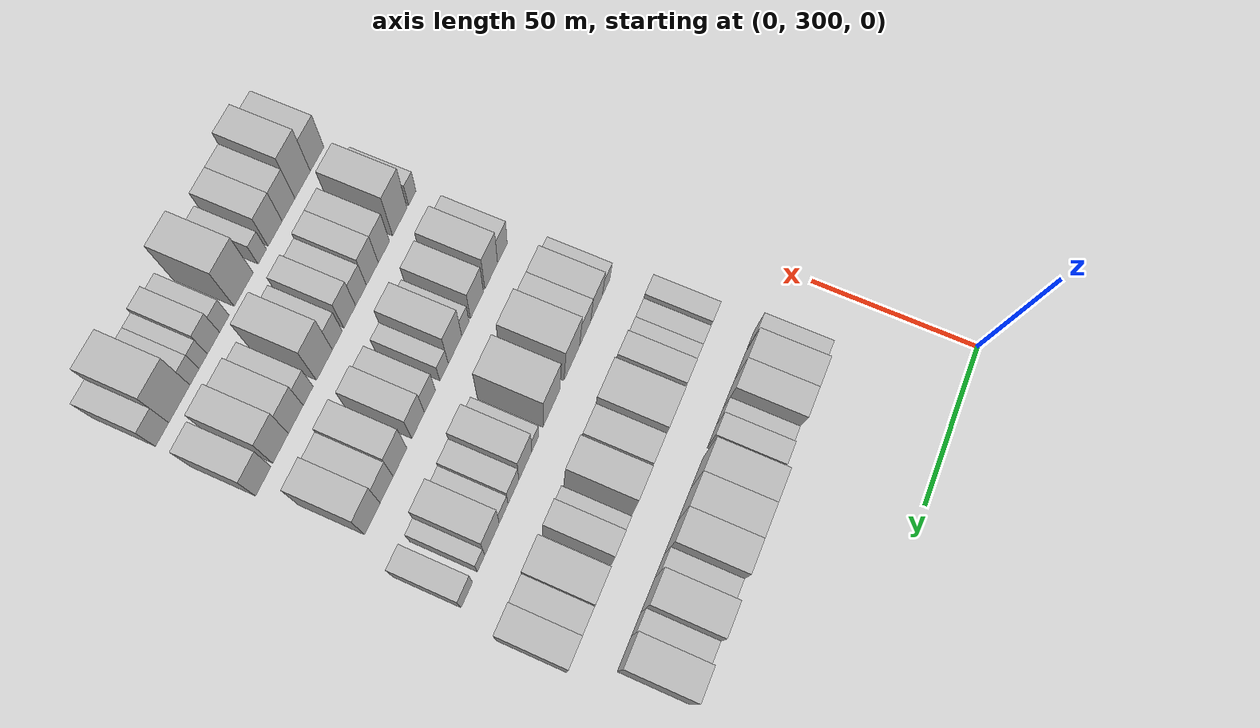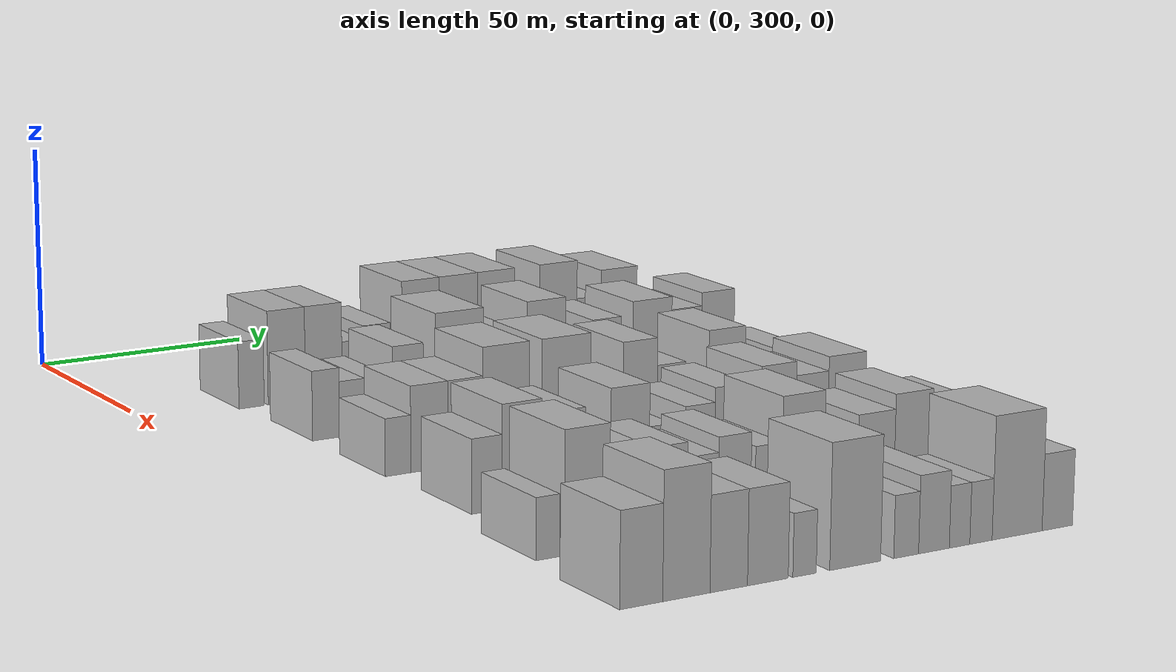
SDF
<sdf version="1.6">
 <world name="default">
  <model name="building_97">
   <static>1</static>
   <pose>50.0000 324.2445 0 0.000000 0.000000 0.000000</pose>
   <link name="link">
    <pose>0 0 7.50 0 0 0</pose>
    <collision name="collision"><geometry><box><size>20.0000 6.0904 15.0000</size></box></geometry></collision>
    <visual name="visual">
     <cast_shadows>0</cast_shadows>
     <geometry><box><size>20.0000 6.0904 15.0000</size></box></geometry>
     <material>
      <script>
       <uri>model://HANNAS_wall/materials/scripts</uri>
       <uri>model://HANNAS_wall/materials/textures</uri>
       <name>vrc/HANNAS_wall</name>
      </script>
     </material>
    </visual>
   </link>
  </model>
  <model name="building_98">
   <static>1</static>
   <pose>50.0000 332.8392 0 0.000000 0.000000 0.000000</pose>
   <link name="link">
    <pose>0 0 10.50 0 0 0</pose>
    <collision name="collision"><geometry><box><size>20.0000 9.0990 21.0000</size></box></geometry></collision>
    <visual name="visual">
     <cast_shadows>0</cast_shadows>
     <geometry><box><size>20.0000 9.0990 21.0000</size></box></geometry>
     <material>
      <script>
       <uri>model://HANNAS_wall/materials/scripts</uri>
       <uri>model://HANNAS_wall/materials/textures</uri>
       <name>vrc/HANNAS_wall</name>
      </script>
     </material>
    </visual>
   </link>
  </model>
  <model name="building_99">
   <static>1</static>
   <pose>50.0000 341.9358 0 0.000000 0.000000 0.000000</pose>
   <link name="link">
    <pose>0 0 10.50 0 0 0</pose>
    <collision name="collision"><geometry><box><size>20.0000 9.0942 21.0000</size></box></geometry></collision>
    <visual name="visual">
     <cast_shadows>0</cast_shadows>
     <geometry><box><size>20.0000 9.0942 21.0000</size></box></geometry>
     <material>
      <script>
       <uri>model://HANNAS_wall/materials/scripts</uri>
       <uri>model://HANNAS_wall/materials/textures</uri>
       <name>vrc/HANNAS_wall</name>
      </script>
     </material>
    </visual>
   </link>
  </model>
  <model name="building_100">
   <static>1</static>
   <pose>50.0000 349.1589 0 0.000000 0.000000 0.000000</pose>
   <link name="link">
    <pose>0 0 6.00 0 0 0</pose>
    <collision name="collision"><geometry><box><size>20.0000 5.3521 12.0000</size></box></geometry></collision>
    <visual name="visual">
     <cast_shadows>0</cast_shadows>
     <geometry><box><size>20.0000 5.3521 12.0000</size></box></geometry>
     <material>
      <script>
       <uri>model://HANNAS_wall/materials/scripts</uri>
       <uri>model://HANNAS_wall/materials/textures</uri>
       <name>vrc/HANNAS_wall</name>
      </script>
     </material>
    </visual>
   </link>
  </model>
  <model name="building_101">
   <static>1</static>
   <pose>50.0000 355.2303 0 0.000000 0.000000 0.000000</pose>
   <link name="link">
    <pose>0 0 7.50 0 0 0</pose>
    <collision name="collision"><geometry><box><size>20.0000 6.7906 15.0000</size></box></geometry></collision>
    <visual name="visual">
     <cast_shadows>0</cast_shadows>
     <geometry><box><size>20.0000 6.7906 15.0000</size></box></geometry>
     <material>
      <script>
       <uri>model://HANNAS_wall/materials/scripts</uri>
       <uri>model://HANNAS_wall/materials/textures</uri>
       <name>vrc/HANNAS_wall</name>
      </script>
     </material>
    </visual>
   </link>
  </model>
  <model name="building_102">
   <static>1</static>
   <pose>50.0000 366.4303 0 0.000000 0.000000 0.000000</pose>
   <link name="link">
    <pose>0 0 12.00 0 0 0</pose>
    <collision name="collision"><geometry><box><size>20.0000 9.6093 24.0000</size></box></geometry></collision>
    <visual name="visual">
     <cast_shadows>0</cast_shadows>
     <geometry><box><size>20.0000 9.6093 24.0000</size></box></geometry>
     <material>
      <script>
       <uri>model://HANNAS_wall/materials/scripts</uri>
       <uri>model://HANNAS_wall/materials/textures</uri>
       <name>vrc/HANNAS_wall</name>
      </script>
     </material>
    </visual>
   </link>
  </model>
  <model name="building_103">
   <static>1</static>
   <pose>50.0000 376.1399 0 0.000000 0.000000 0.000000</pose>
   <link name="link">
    <pose>0 0 12.00 0 0 0</pose>
    <collision name="collision"><geometry><box><size>20.0000 9.8100 24.0000</size></box></geometry></collision>
    <visual name="visual">
     <cast_shadows>0</cast_shadows>
     <geometry><box><size>20.0000 9.8100 24.0000</size></box></geometry>
     <material>
      <script>
       <uri>model://HANNAS_wall/materials/scripts</uri>
       <uri>model://HANNAS_wall/materials/textures</uri>
       <name>vrc/HANNAS_wall</name>
      </script>
     </material>
    </visual>
   </link>
  </model>
  <model name="building_104">
   <static>1</static>
   <pose>50.0000 385.9068 0 0.000000 0.000000 0.000000</pose>
   <link name="link">
    <pose>0 0 12.00 0 0 0</pose>
    <collision name="collision"><geometry><box><size>20.0000 9.7238 24.0000</size></box></geometry></collision>
    <visual name="visual">
     <cast_shadows>0</cast_shadows>
     <geometry><box><size>20.0000 9.7238 24.0000</size></box></geometry>
     <material>
      <script>
       <uri>model://HANNAS_wall/materials/scripts</uri>
       <uri>model://HANNAS_wall/materials/textures</uri>
       <name>vrc/HANNAS_wall</name>
      </script>
     </material>
    </visual>
   </link>
  </model>
  <model name="building_105">
   <static>1</static>
   <pose>50.0000 394.1349 0 0.000000 0.000000 0.000000</pose>
   <link name="link">
    <pose>0 0 7.50 0 0 0</pose>
    <collision name="collision"><geometry><box><size>20.0000 6.7324 15.0000</size></box></geometry></collision>
    <visual name="visual">
     <cast_shadows>0</cast_shadows>
     <geometry><box><size>20.0000 6.7324 15.0000</size></box></geometry>
     <material>
      <script>
       <uri>model://HANNAS_wall/materials/scripts</uri>
       <uri>model://HANNAS_wall/materials/textures</uri>
       <name>vrc/HANNAS_wall</name>
      </script>
     </material>
    </visual>
   </link>
  </model>
  <model name="building_106">
   <static>1</static>
   <pose>50.0000 402.4885 0 0.000000 0.000000 0.000000</pose>
   <link name="link">
    <pose>0 0 12.00 0 0 0</pose>
    <collision name="collision"><geometry><box><size>20.0000 9.9749 24.0000</size></box></geometry></collision>
    <visual name="visual">
     <cast_shadows>0</cast_shadows>
     <geometry><box><size>20.0000 9.9749 24.0000</size></box></geometry>
     <material>
      <script>
       <uri>model://HANNAS_wall/materials/scripts</uri>
       <uri>model://HANNAS_wall/materials/textures</uri>
       <name>vrc/HANNAS_wall</name>
      </script>
     </material>
    </visual>
   </link>
  </model>
  <model name="building_107">
   <static>1</static>
   <pose>50.0000 410.7297 0 0.000000 0.000000 0.000000</pose>
   <link name="link">
    <pose>0 0 7.50 0 0 0</pose>
    <collision name="collision"><geometry><box><size>20.0000 6.5074 15.0000</size></box></geometry></collision>
    <visual name="visual">
     <cast_shadows>0</cast_shadows>
     <geometry><box><size>20.0000 6.5074 15.0000</size></box></geometry>
     <material>
      <script>
       <uri>model://HANNAS_wall/materials/scripts</uri>
       <uri>model://HANNAS_wall/materials/textures</uri>
       <name>vrc/HANNAS_wall</name>
      </script>
     </material>
    </visual>
   </link>
  </model>
  <model name="building_108">
   <static>1</static>
   <pose>50.0000 418.9226 0 0.000000 0.000000 0.000000</pose>
   <link name="link">
    <pose>0 0 10.50 0 0 0</pose>
    <collision name="collision"><geometry><box><size>20.0000 9.8784 21.0000</size></box></geometry></collision>
    <visual name="visual">
     <cast_shadows>0</cast_shadows>
     <geometry><box><size>20.0000 9.8784 21.0000</size></box></geometry>
     <material>
      <script>
       <uri>model://HANNAS_wall/materials/scripts</uri>
       <uri>model://HANNAS_wall/materials/textures</uri>
       <name>vrc/HANNAS_wall</name>
      </script>
     </material>
    </visual>
   </link>
  </model>
  <model name="building_220">
   <static>1</static>
   <pose>82.0000 326.1415 0 0.000000 0.000000 0.000000</pose>
   <link name="link">
    <pose>0 0 7.50 0 0 0</pose>
    <collision name="collision"><geometry><box><size>20.0000 6.3848 15.0000</size></box></geometry></collision>
    <visual name="visual">
     <cast_shadows>0</cast_shadows>
     <geometry><box><size>20.0000 6.3848 15.0000</size></box></geometry>
     <material>
      <script>
       <uri>model://HANNAS_wall/materials/scripts</uri>
       <uri>model://HANNAS_wall/materials/textures</uri>
       <name>vrc/HANNAS_wall</name>
      </script>
     </material>
    </visual>
   </link>
  </model>
  <model name="building_221">
   <static>1</static>
   <pose>82.0000 332.3140 0 0.000000 0.000000 0.000000</pose>
   <link name="link">
    <pose>0 0 6.00 0 0 0</pose>
    <collision name="collision"><geometry><box><size>20.0000 5.9602 12.0000</size></box></geometry></collision>
    <visual name="visual">
     <cast_shadows>0</cast_shadows>
     <geometry><box><size>20.0000 5.9602 12.0000</size></box></geometry>
     <material>
      <script>
       <uri>model://HANNAS_wall/materials/scripts</uri>
       <uri>model://HANNAS_wall/materials/textures</uri>
       <name>vrc/HANNAS_wall</name>
      </script>
     </material>
    </visual>
   </link>
  </model>
  <model name="building_222">
   <static>1</static>
   <pose>82.0000 338.1371 0 0.000000 0.000000 0.000000</pose>
   <link name="link">
    <pose>0 0 6.00 0 0 0</pose>
    <collision name="collision"><geometry><box><size>20.0000 5.6861 12.0000</size></box></geometry></collision>
    <visual name="visual">
     <cast_shadows>0</cast_shadows>
     <geometry><box><size>20.0000 5.6861 12.0000</size></box></geometry>
     <material>
      <script>
       <uri>model://HANNAS_wall/materials/scripts</uri>
       <uri>model://HANNAS_wall/materials/textures</uri>
       <name>vrc/HANNAS_wall</name>
      </script>
     </material>
    </visual>
   </link>
  </model>
  <model name="building_223">
   <static>1</static>
   <pose>82.0000 345.7145 0 0.000000 0.000000 0.000000</pose>
   <link name="link">
    <pose>0 0 9.00 0 0 0</pose>
    <collision name="collision"><geometry><box><size>20.0000 7.4686 18.0000</size></box></geometry></collision>
    <visual name="visual">
     <cast_shadows>0</cast_shadows>
     <geometry><box><size>20.0000 7.4686 18.0000</size></box></geometry>
     <material>
      <script>
       <uri>model://HANNAS_wall/materials/scripts</uri>
       <uri>model://HANNAS_wall/materials/textures</uri>
       <name>vrc/HANNAS_wall</name>
      </script>
     </material>
    </visual>
   </link>
  </model>
  <model name="building_224">
   <static>1</static>
   <pose>82.0000 358.3834 0 0.000000 0.000000 0.000000</pose>
   <link name="link">
    <pose>0 0 12.00 0 0 0</pose>
    <collision name="collision"><geometry><box><size>20.0000 11.8694 24.0000</size></box></geometry></collision>
    <visual name="visual">
     <cast_shadows>0</cast_shadows>
     <geometry><box><size>20.0000 11.8694 24.0000</size></box></geometry>
     <material>
      <script>
       <uri>model://HANNAS_wall/materials/scripts</uri>
       <uri>model://HANNAS_wall/materials/textures</uri>
       <name>vrc/HANNAS_wall</name>
      </script>
     </material>
    </visual>
   </link>
  </model>
  <model name="building_225">
   <static>1</static>
   <pose>82.0000 368.7389 0 0.000000 0.000000 0.000000</pose>
   <link name="link">
    <pose>0 0 9.00 0 0 0</pose>
    <collision name="collision"><geometry><box><size>20.0000 8.8415 18.0000</size></box></geometry></collision>
    <visual name="visual">
     <cast_shadows>0</cast_shadows>
     <geometry><box><size>20.0000 8.8415 18.0000</size></box></geometry>
     <material>
      <script>
       <uri>model://HANNAS_wall/materials/scripts</uri>
       <uri>model://HANNAS_wall/materials/textures</uri>
       <name>vrc/HANNAS_wall</name>
      </script>
     </material>
    </visual>
   </link>
  </model>
  <model name="building_226">
   <static>1</static>
   <pose>82.0000 380.0419 0 0.000000 0.000000 0.000000</pose>
   <link name="link">
    <pose>0 0 12.00 0 0 0</pose>
    <collision name="collision"><geometry><box><size>20.0000 9.7647 24.0000</size></box></geometry></collision>
    <visual name="visual">
     <cast_shadows>0</cast_shadows>
     <geometry><box><size>20.0000 9.7647 24.0000</size></box></geometry>
     <material>
      <script>
       <uri>model://HANNAS_wall/materials/scripts</uri>
       <uri>model://HANNAS_wall/materials/textures</uri>
       <name>vrc/HANNAS_wall</name>
      </script>
     </material>
    </visual>
   </link>
  </model>
  <model name="building_227">
   <static>1</static>
   <pose>82.0000 389.3820 0 0.000000 0.000000 0.000000</pose>
   <link name="link">
    <pose>0 0 6.00 0 0 0</pose>
    <collision name="collision"><geometry><box><size>20.0000 4.9155 12.0000</size></box></geometry></collision>
    <visual name="visual">
     <cast_shadows>0</cast_shadows>
     <geometry><box><size>20.0000 4.9155 12.0000</size></box></geometry>
     <material>
      <script>
       <uri>model://HANNAS_wall/materials/scripts</uri>
       <uri>model://HANNAS_wall/materials/textures</uri>
       <name>vrc/HANNAS_wall</name>
      </script>
     </material>
    </visual>
   </link>
  </model>
  <model name="building_228">
   <static>1</static>
   <pose>82.0000 395.5599 0 0.000000 0.000000 0.000000</pose>
   <link name="link">
    <pose>0 0 9.00 0 0 0</pose>
    <collision name="collision"><geometry><box><size>20.0000 7.4402 18.0000</size></box></geometry></collision>
    <visual name="visual">
     <cast_shadows>0</cast_shadows>
     <geometry><box><size>20.0000 7.4402 18.0000</size></box></geometry>
     <material>
      <script>
       <uri>model://HANNAS_wall/materials/scripts</uri>
       <uri>model://HANNAS_wall/materials/textures</uri>
       <name>vrc/HANNAS_wall</name>
      </script>
     </material>
    </visual>
   </link>
  </model>
  <model name="building_229">
   <static>1</static>
   <pose>82.0000 407.4193 0 0.000000 0.000000 0.000000</pose>
   <link name="link">
    <pose>0 0 10.50 0 0 0</pose>
    <collision name="collision"><geometry><box><size>20.0000 10.2787 21.0000</size></box></geometry></collision>
    <visual name="visual">
     <cast_shadows>0</cast_shadows>
     <geometry><box><size>20.0000 10.2787 21.0000</size></box></geometry>
     <material>
      <script>
       <uri>model://HANNAS_wall/materials/scripts</uri>
       <uri>model://HANNAS_wall/materials/textures</uri>
       <name>vrc/HANNAS_wall</name>
      </script>
     </material>
    </visual>
   </link>
  </model>
  <model name="building_230">
   <static>1</static>
   <pose>82.0000 416.5424 0 0.000000 0.000000 0.000000</pose>
   <link name="link">
    <pose>0 0 9.00 0 0 0</pose>
    <collision name="collision"><geometry><box><size>20.0000 7.9674 18.0000</size></box></geometry></collision>
    <visual name="visual">
     <cast_shadows>0</cast_shadows>
     <geometry><box><size>20.0000 7.9674 18.0000</size></box></geometry>
     <material>
      <script>
       <uri>model://HANNAS_wall/materials/scripts</uri>
       <uri>model://HANNAS_wall/materials/textures</uri>
       <name>vrc/HANNAS_wall</name>
      </script>
     </material>
    </visual>
   </link>
  </model>
  <model name="building_231">
   <static>1</static>
   <pose>82.0000 424.9403 0 0.000000 0.000000 0.000000</pose>
   <link name="link">
    <pose>0 0 10.50 0 0 0</pose>
    <collision name="collision"><geometry><box><size>20.0000 8.8285 21.0000</size></box></geometry></collision>
    <visual name="visual">
     <cast_shadows>0</cast_shadows>
     <geometry><box><size>20.0000 8.8285 21.0000</size></box></geometry>
     <material>
      <script>
       <uri>model://HANNAS_wall/materials/scripts</uri>
       <uri>model://HANNAS_wall/materials/textures</uri>
       <name>vrc/HANNAS_wall</name>
      </script>
     </material>
    </visual>
   </link>
  </model>
  <model name="building_342">
   <static>1</static>
   <pose>114.0000 326.0093 0 0.000000 0.000000 0.000000</pose>
   <link name="link">
    <pose>0 0 6.00 0 0 0</pose>
    <collision name="collision"><geometry><box><size>20.0000 5.8634 12.0000</size></box></geometry></collision>
    <visual name="visual">
     <cast_shadows>0</cast_shadows>
     <geometry><box><size>20.0000 5.8634 12.0000</size></box></geometry>
     <material>
      <script>
       <uri>model://HANNAS_wall/materials/scripts</uri>
       <uri>model://HANNAS_wall/materials/textures</uri>
       <name>vrc/HANNAS_wall</name>
      </script>
     </material>
    </visual>
   </link>
  </model>
  <model name="building_343">
   <static>1</static>
   <pose>114.0000 333.2475 0 0.000000 0.000000 0.000000</pose>
   <link name="link">
    <pose>0 0 9.00 0 0 0</pose>
    <collision name="collision"><geometry><box><size>20.0000 8.6129 18.0000</size></box></geometry></collision>
    <visual name="visual">
     <cast_shadows>0</cast_shadows>
     <geometry><box><size>20.0000 8.6129 18.0000</size></box></geometry>
     <material>
      <script>
       <uri>model://HANNAS_wall/materials/scripts</uri>
       <uri>model://HANNAS_wall/materials/textures</uri>
       <name>vrc/HANNAS_wall</name>
      </script>
     </material>
    </visual>
   </link>
  </model>
  <model name="building_344">
   <static>1</static>
   <pose>114.0000 341.5996 0 0.000000 0.000000 0.000000</pose>
   <link name="link">
    <pose>0 0 9.00 0 0 0</pose>
    <collision name="collision"><geometry><box><size>20.0000 8.0914 18.0000</size></box></geometry></collision>
    <visual name="visual">
     <cast_shadows>0</cast_shadows>
     <geometry><box><size>20.0000 8.0914 18.0000</size></box></geometry>
     <material>
      <script>
       <uri>model://HANNAS_wall/materials/scripts</uri>
       <uri>model://HANNAS_wall/materials/textures</uri>
       <name>vrc/HANNAS_wall</name>
      </script>
     </material>
    </visual>
   </link>
  </model>
  <model name="building_345">
   <static>1</static>
   <pose>114.0000 351.2055 0 0.000000 0.000000 0.000000</pose>
   <link name="link">
    <pose>0 0 12.00 0 0 0</pose>
    <collision name="collision"><geometry><box><size>20.0000 11.1204 24.0000</size></box></geometry></collision>
    <visual name="visual">
     <cast_shadows>0</cast_shadows>
     <geometry><box><size>20.0000 11.1204 24.0000</size></box></geometry>
     <material>
      <script>
       <uri>model://HANNAS_wall/materials/scripts</uri>
       <uri>model://HANNAS_wall/materials/textures</uri>
       <name>vrc/HANNAS_wall</name>
      </script>
     </material>
    </visual>
   </link>
  </model>
  <model name="building_346">
   <static>1</static>
   <pose>114.0000 365.6583 0 0.000000 0.000000 0.000000</pose>
   <link name="link">
    <pose>0 0 12.00 0 0 0</pose>
    <collision name="collision"><geometry><box><size>20.0000 11.7851 24.0000</size></box></geometry></collision>
    <visual name="visual">
     <cast_shadows>0</cast_shadows>
     <geometry><box><size>20.0000 11.7851 24.0000</size></box></geometry>
     <material>
      <script>
       <uri>model://HANNAS_wall/materials/scripts</uri>
       <uri>model://HANNAS_wall/materials/textures</uri>
       <name>vrc/HANNAS_wall</name>
      </script>
     </material>
    </visual>
   </link>
  </model>
  <model name="building_347">
   <static>1</static>
   <pose>114.0000 377.0051 0 0.000000 0.000000 0.000000</pose>
   <link name="link">
    <pose>0 0 6.00 0 0 0</pose>
    <collision name="collision"><geometry><box><size>20.0000 4.9085 12.0000</size></box></geometry></collision>
    <visual name="visual">
     <cast_shadows>0</cast_shadows>
     <geometry><box><size>20.0000 4.9085 12.0000</size></box></geometry>
     <material>
      <script>
       <uri>model://HANNAS_wall/materials/scripts</uri>
       <uri>model://HANNAS_wall/materials/textures</uri>
       <name>vrc/HANNAS_wall</name>
      </script>
     </material>
    </visual>
   </link>
  </model>
  <model name="building_348">
   <static>1</static>
   <pose>114.0000 383.7370 0 0.000000 0.000000 0.000000</pose>
   <link name="link">
    <pose>0 0 10.50 0 0 0</pose>
    <collision name="collision"><geometry><box><size>20.0000 8.5553 21.0000</size></box></geometry></collision>
    <visual name="visual">
     <cast_shadows>0</cast_shadows>
     <geometry><box><size>20.0000 8.5553 21.0000</size></box></geometry>
     <material>
      <script>
       <uri>model://HANNAS_wall/materials/scripts</uri>
       <uri>model://HANNAS_wall/materials/textures</uri>
       <name>vrc/HANNAS_wall</name>
      </script>
     </material>
    </visual>
   </link>
  </model>
  <model name="building_349">
   <static>1</static>
   <pose>114.0000 391.5890 0 0.000000 0.000000 0.000000</pose>
   <link name="link">
    <pose>0 0 7.50 0 0 0</pose>
    <collision name="collision"><geometry><box><size>20.0000 7.1487 15.0000</size></box></geometry></collision>
    <visual name="visual">
     <cast_shadows>0</cast_shadows>
     <geometry><box><size>20.0000 7.1487 15.0000</size></box></geometry>
     <material>
      <script>
       <uri>model://HANNAS_wall/materials/scripts</uri>
       <uri>model://HANNAS_wall/materials/textures</uri>
       <name>vrc/HANNAS_wall</name>
      </script>
     </material>
    </visual>
   </link>
  </model>
  <model name="building_350">
   <static>1</static>
   <pose>114.0000 398.0593 0 0.000000 0.000000 0.000000</pose>
   <link name="link">
    <pose>0 0 6.00 0 0 0</pose>
    <collision name="collision"><geometry><box><size>20.0000 5.7920 12.0000</size></box></geometry></collision>
    <visual name="visual">
     <cast_shadows>0</cast_shadows>
     <geometry><box><size>20.0000 5.7920 12.0000</size></box></geometry>
     <material>
      <script>
       <uri>model://HANNAS_wall/materials/scripts</uri>
       <uri>model://HANNAS_wall/materials/textures</uri>
       <name>vrc/HANNAS_wall</name>
      </script>
     </material>
    </visual>
   </link>
  </model>
  <model name="building_351">
   <static>1</static>
   <pose>114.0000 405.6379 0 0.000000 0.000000 0.000000</pose>
   <link name="link">
    <pose>0 0 10.50 0 0 0</pose>
    <collision name="collision"><geometry><box><size>20.0000 9.3652 21.0000</size></box></geometry></collision>
    <visual name="visual">
     <cast_shadows>0</cast_shadows>
     <geometry><box><size>20.0000 9.3652 21.0000</size></box></geometry>
     <material>
      <script>
       <uri>model://HANNAS_wall/materials/scripts</uri>
       <uri>model://HANNAS_wall/materials/textures</uri>
       <name>vrc/HANNAS_wall</name>
      </script>
     </material>
    </visual>
   </link>
  </model>
  <model name="building_352">
   <static>1</static>
   <pose>114.0000 412.7276 0 0.000000 0.000000 0.000000</pose>
   <link name="link">
    <pose>0 0 6.00 0 0 0</pose>
    <collision name="collision"><geometry><box><size>20.0000 4.8141 12.0000</size></box></geometry></collision>
    <visual name="visual">
     <cast_shadows>0</cast_shadows>
     <geometry><box><size>20.0000 4.8141 12.0000</size></box></geometry>
     <material>
      <script>
       <uri>model://HANNAS_wall/materials/scripts</uri>
       <uri>model://HANNAS_wall/materials/textures</uri>
       <name>vrc/HANNAS_wall</name>
      </script>
     </material>
    </visual>
   </link>
  </model>
  <model name="building_353">
   <static>1</static>
   <pose>114.0000 421.7704 0 0.000000 0.000000 0.000000</pose>
   <link name="link">
    <pose>0 0 7.50 0 0 0</pose>
    <collision name="collision"><geometry><box><size>20.0000 7.2715 15.0000</size></box></geometry></collision>
    <visual name="visual">
     <cast_shadows>0</cast_shadows>
     <geometry><box><size>20.0000 7.2715 15.0000</size></box></geometry>
     <material>
      <script>
       <uri>model://HANNAS_wall/materials/scripts</uri>
       <uri>model://HANNAS_wall/materials/textures</uri>
       <name>vrc/HANNAS_wall</name>
      </script>
     </material>
    </visual>
   </link>
  </model>
  <model name="building_454">
   <static>1</static>
   <pose>146.0000 328.1781 0 0.000000 0.000000 0.000000</pose>
   <link name="link">
    <pose>0 0 7.50 0 0 0</pose>
    <collision name="collision"><geometry><box><size>20.0000 6.8369 15.0000</size></box></geometry></collision>
    <visual name="visual">
     <cast_shadows>0</cast_shadows>
     <geometry><box><size>20.0000 6.8369 15.0000</size></box></geometry>
     <material>
      <script>
       <uri>model://HANNAS_wall/materials/scripts</uri>
       <uri>model://HANNAS_wall/materials/textures</uri>
       <name>vrc/HANNAS_wall</name>
      </script>
     </material>
    </visual>
   </link>
  </model>
  <model name="building_455">
   <static>1</static>
   <pose>146.0000 336.0515 0 0.000000 0.000000 0.000000</pose>
   <link name="link">
    <pose>0 0 10.50 0 0 0</pose>
    <collision name="collision"><geometry><box><size>20.0000 8.9099 21.0000</size></box></geometry></collision>
    <visual name="visual">
     <cast_shadows>0</cast_shadows>
     <geometry><box><size>20.0000 8.9099 21.0000</size></box></geometry>
     <material>
      <script>
       <uri>model://HANNAS_wall/materials/scripts</uri>
       <uri>model://HANNAS_wall/materials/textures</uri>
       <name>vrc/HANNAS_wall</name>
      </script>
     </material>
    </visual>
   </link>
  </model>
  <model name="building_456">
   <static>1</static>
   <pose>146.0000 345.9685 0 0.000000 0.000000 0.000000</pose>
   <link name="link">
    <pose>0 0 9.00 0 0 0</pose>
    <collision name="collision"><geometry><box><size>20.0000 8.9242 18.0000</size></box></geometry></collision>
    <visual name="visual">
     <cast_shadows>0</cast_shadows>
     <geometry><box><size>20.0000 8.9242 18.0000</size></box></geometry>
     <material>
      <script>
       <uri>model://HANNAS_wall/materials/scripts</uri>
       <uri>model://HANNAS_wall/materials/textures</uri>
       <name>vrc/HANNAS_wall</name>
      </script>
     </material>
    </visual>
   </link>
  </model>
  <model name="building_457">
   <static>1</static>
   <pose>146.0000 353.8863 0 0.000000 0.000000 0.000000</pose>
   <link name="link">
    <pose>0 0 6.00 0 0 0</pose>
    <collision name="collision"><geometry><box><size>20.0000 4.9115 12.0000</size></box></geometry></collision>
    <visual name="visual">
     <cast_shadows>0</cast_shadows>
     <geometry><box><size>20.0000 4.9115 12.0000</size></box></geometry>
     <material>
      <script>
       <uri>model://HANNAS_wall/materials/scripts</uri>
       <uri>model://HANNAS_wall/materials/textures</uri>
       <name>vrc/HANNAS_wall</name>
      </script>
     </material>
    </visual>
   </link>
  </model>
  <model name="building_458">
   <static>1</static>
   <pose>146.0000 360.8625 0 0.000000 0.000000 0.000000</pose>
   <link name="link">
    <pose>0 0 10.50 0 0 0</pose>
    <collision name="collision"><geometry><box><size>20.0000 9.0409 21.0000</size></box></geometry></collision>
    <visual name="visual">
     <cast_shadows>0</cast_shadows>
     <geometry><box><size>20.0000 9.0409 21.0000</size></box></geometry>
     <material>
      <script>
       <uri>model://HANNAS_wall/materials/scripts</uri>
       <uri>model://HANNAS_wall/materials/textures</uri>
       <name>vrc/HANNAS_wall</name>
      </script>
     </material>
    </visual>
   </link>
  </model>
  <model name="building_459">
   <static>1</static>
   <pose>146.0000 368.1349 0 0.000000 0.000000 0.000000</pose>
   <link name="link">
    <pose>0 0 6.00 0 0 0</pose>
    <collision name="collision"><geometry><box><size>20.0000 5.5041 12.0000</size></box></geometry></collision>
    <visual name="visual">
     <cast_shadows>0</cast_shadows>
     <geometry><box><size>20.0000 5.5041 12.0000</size></box></geometry>
     <material>
      <script>
       <uri>model://HANNAS_wall/materials/scripts</uri>
       <uri>model://HANNAS_wall/materials/textures</uri>
       <name>vrc/HANNAS_wall</name>
      </script>
     </material>
    </visual>
   </link>
  </model>
  <model name="building_460">
   <static>1</static>
   <pose>146.0000 377.4523 0 0.000000 0.000000 0.000000</pose>
   <link name="link">
    <pose>0 0 7.50 0 0 0</pose>
    <collision name="collision"><geometry><box><size>20.0000 7.1305 15.0000</size></box></geometry></collision>
    <visual name="visual">
     <cast_shadows>0</cast_shadows>
     <geometry><box><size>20.0000 7.1305 15.0000</size></box></geometry>
     <material>
      <script>
       <uri>model://HANNAS_wall/materials/scripts</uri>
       <uri>model://HANNAS_wall/materials/textures</uri>
       <name>vrc/HANNAS_wall</name>
      </script>
     </material>
    </visual>
   </link>
  </model>
  <model name="building_461">
   <static>1</static>
   <pose>146.0000 385.0974 0 0.000000 0.000000 0.000000</pose>
   <link name="link">
    <pose>0 0 9.00 0 0 0</pose>
    <collision name="collision"><geometry><box><size>20.0000 8.1599 18.0000</size></box></geometry></collision>
    <visual name="visual">
     <cast_shadows>0</cast_shadows>
     <geometry><box><size>20.0000 8.1599 18.0000</size></box></geometry>
     <material>
      <script>
       <uri>model://HANNAS_wall/materials/scripts</uri>
       <uri>model://HANNAS_wall/materials/textures</uri>
       <name>vrc/HANNAS_wall</name>
      </script>
     </material>
    </visual>
   </link>
  </model>
  <model name="building_462">
   <static>1</static>
   <pose>146.0000 396.5389 0 0.000000 0.000000 0.000000</pose>
   <link name="link">
    <pose>0 0 10.50 0 0 0</pose>
    <collision name="collision"><geometry><box><size>20.0000 8.7230 21.0000</size></box></geometry></collision>
    <visual name="visual">
     <cast_shadows>0</cast_shadows>
     <geometry><box><size>20.0000 8.7230 21.0000</size></box></geometry>
     <material>
      <script>
       <uri>model://HANNAS_wall/materials/scripts</uri>
       <uri>model://HANNAS_wall/materials/textures</uri>
       <name>vrc/HANNAS_wall</name>
      </script>
     </material>
    </visual>
   </link>
  </model>
  <model name="building_463">
   <static>1</static>
   <pose>146.0000 404.9150 0 0.000000 0.000000 0.000000</pose>
   <link name="link">
    <pose>0 0 9.00 0 0 0</pose>
    <collision name="collision"><geometry><box><size>20.0000 8.0292 18.0000</size></box></geometry></collision>
    <visual name="visual">
     <cast_shadows>0</cast_shadows>
     <geometry><box><size>20.0000 8.0292 18.0000</size></box></geometry>
     <material>
      <script>
       <uri>model://HANNAS_wall/materials/scripts</uri>
       <uri>model://HANNAS_wall/materials/textures</uri>
       <name>vrc/HANNAS_wall</name>
      </script>
     </material>
    </visual>
   </link>
  </model>
  <model name="building_464">
   <static>1</static>
   <pose>146.0000 413.6555 0 0.000000 0.000000 0.000000</pose>
   <link name="link">
    <pose>0 0 10.50 0 0 0</pose>
    <collision name="collision"><geometry><box><size>20.0000 9.4517 21.0000</size></box></geometry></collision>
    <visual name="visual">
     <cast_shadows>0</cast_shadows>
     <geometry><box><size>20.0000 9.4517 21.0000</size></box></geometry>
     <material>
      <script>
       <uri>model://HANNAS_wall/materials/scripts</uri>
       <uri>model://HANNAS_wall/materials/textures</uri>
       <name>vrc/HANNAS_wall</name>
      </script>
     </material>
    </visual>
   </link>
  </model>
  <model name="building_566">
   <static>1</static>
   <pose>178.0000 322.6496 0 0.000000 0.000000 0.000000</pose>
   <link name="link">
    <pose>0 0 6.00 0 0 0</pose>
    <collision name="collision"><geometry><box><size>20.0000 5.0920 12.0000</size></box></geometry></collision>
    <visual name="visual">
     <cast_shadows>0</cast_shadows>
     <geometry><box><size>20.0000 5.0920 12.0000</size></box></geometry>
     <material>
      <script>
       <uri>model://HANNAS_wall/materials/scripts</uri>
       <uri>model://HANNAS_wall/materials/textures</uri>
       <name>vrc/HANNAS_wall</name>
      </script>
     </material>
    </visual>
   </link>
  </model>
  <model name="building_567">
   <static>1</static>
   <pose>178.0000 331.1114 0 0.000000 0.000000 0.000000</pose>
   <link name="link">
    <pose>0 0 12.00 0 0 0</pose>
    <collision name="collision"><geometry><box><size>20.0000 9.8316 24.0000</size></box></geometry></collision>
    <visual name="visual">
     <cast_shadows>0</cast_shadows>
     <geometry><box><size>20.0000 9.8316 24.0000</size></box></geometry>
     <material>
      <script>
       <uri>model://HANNAS_wall/materials/scripts</uri>
       <uri>model://HANNAS_wall/materials/textures</uri>
       <name>vrc/HANNAS_wall</name>
      </script>
     </material>
    </visual>
   </link>
  </model>
  <model name="building_568">
   <static>1</static>
   <pose>178.0000 341.7469 0 0.000000 0.000000 0.000000</pose>
   <link name="link">
    <pose>0 0 9.00 0 0 0</pose>
    <collision name="collision"><geometry><box><size>20.0000 7.4394 18.0000</size></box></geometry></collision>
    <visual name="visual">
     <cast_shadows>0</cast_shadows>
     <geometry><box><size>20.0000 7.4394 18.0000</size></box></geometry>
     <material>
      <script>
       <uri>model://HANNAS_wall/materials/scripts</uri>
       <uri>model://HANNAS_wall/materials/textures</uri>
       <name>vrc/HANNAS_wall</name>
      </script>
     </material>
    </visual>
   </link>
  </model>
  <model name="building_569">
   <static>1</static>
   <pose>178.0000 349.3482 0 0.000000 0.000000 0.000000</pose>
   <link name="link">
    <pose>0 0 9.00 0 0 0</pose>
    <collision name="collision"><geometry><box><size>20.0000 7.7633 18.0000</size></box></geometry></collision>
    <visual name="visual">
     <cast_shadows>0</cast_shadows>
     <geometry><box><size>20.0000 7.7633 18.0000</size></box></geometry>
     <material>
      <script>
       <uri>model://HANNAS_wall/materials/scripts</uri>
       <uri>model://HANNAS_wall/materials/textures</uri>
       <name>vrc/HANNAS_wall</name>
      </script>
     </material>
    </visual>
   </link>
  </model>
  <model name="building_570">
   <static>1</static>
   <pose>178.0000 356.7090 0 0.000000 0.000000 0.000000</pose>
   <link name="link">
    <pose>0 0 7.50 0 0 0</pose>
    <collision name="collision"><geometry><box><size>20.0000 6.9581 15.0000</size></box></geometry></collision>
    <visual name="visual">
     <cast_shadows>0</cast_shadows>
     <geometry><box><size>20.0000 6.9581 15.0000</size></box></geometry>
     <material>
      <script>
       <uri>model://HANNAS_wall/materials/scripts</uri>
       <uri>model://HANNAS_wall/materials/textures</uri>
       <name>vrc/HANNAS_wall</name>
      </script>
     </material>
    </visual>
   </link>
  </model>
  <model name="building_571">
   <static>1</static>
   <pose>178.0000 363.9175 0 0.000000 0.000000 0.000000</pose>
   <link name="link">
    <pose>0 0 9.00 0 0 0</pose>
    <collision name="collision"><geometry><box><size>20.0000 7.4589 18.0000</size></box></geometry></collision>
    <visual name="visual">
     <cast_shadows>0</cast_shadows>
     <geometry><box><size>20.0000 7.4589 18.0000</size></box></geometry>
     <material>
      <script>
       <uri>model://HANNAS_wall/materials/scripts</uri>
       <uri>model://HANNAS_wall/materials/textures</uri>
       <name>vrc/HANNAS_wall</name>
      </script>
     </material>
    </visual>
   </link>
  </model>
  <model name="building_572">
   <static>1</static>
   <pose>178.0000 371.7456 0 0.000000 0.000000 0.000000</pose>
   <link name="link">
    <pose>0 0 7.50 0 0 0</pose>
    <collision name="collision"><geometry><box><size>20.0000 6.1973 15.0000</size></box></geometry></collision>
    <visual name="visual">
     <cast_shadows>0</cast_shadows>
     <geometry><box><size>20.0000 6.1973 15.0000</size></box></geometry>
     <material>
      <script>
       <uri>model://HANNAS_wall/materials/scripts</uri>
       <uri>model://HANNAS_wall/materials/textures</uri>
       <name>vrc/HANNAS_wall</name>
      </script>
     </material>
    </visual>
   </link>
  </model>
  <model name="building_573">
   <static>1</static>
   <pose>178.0000 379.7922 0 0.000000 0.000000 0.000000</pose>
   <link name="link">
    <pose>0 0 12.00 0 0 0</pose>
    <collision name="collision"><geometry><box><size>20.0000 9.8960 24.0000</size></box></geometry></collision>
    <visual name="visual">
     <cast_shadows>0</cast_shadows>
     <geometry><box><size>20.0000 9.8960 24.0000</size></box></geometry>
     <material>
      <script>
       <uri>model://HANNAS_wall/materials/scripts</uri>
       <uri>model://HANNAS_wall/materials/textures</uri>
       <name>vrc/HANNAS_wall</name>
      </script>
     </material>
    </visual>
   </link>
  </model>
  <model name="building_574">
   <static>1</static>
   <pose>178.0000 389.7642 0 0.000000 0.000000 0.000000</pose>
   <link name="link">
    <pose>0 0 7.50 0 0 0</pose>
    <collision name="collision"><geometry><box><size>20.0000 6.0480 15.0000</size></box></geometry></collision>
    <visual name="visual">
     <cast_shadows>0</cast_shadows>
     <geometry><box><size>20.0000 6.0480 15.0000</size></box></geometry>
     <material>
      <script>
       <uri>model://HANNAS_wall/materials/scripts</uri>
       <uri>model://HANNAS_wall/materials/textures</uri>
       <name>vrc/HANNAS_wall</name>
      </script>
     </material>
    </visual>
   </link>
  </model>
  <model name="building_575">
   <static>1</static>
   <pose>178.0000 397.2243 0 0.000000 0.000000 0.000000</pose>
   <link name="link">
    <pose>0 0 9.00 0 0 0</pose>
    <collision name="collision"><geometry><box><size>20.0000 8.8722 18.0000</size></box></geometry></collision>
    <visual name="visual">
     <cast_shadows>0</cast_shadows>
     <geometry><box><size>20.0000 8.8722 18.0000</size></box></geometry>
     <material>
      <script>
       <uri>model://HANNAS_wall/materials/scripts</uri>
       <uri>model://HANNAS_wall/materials/textures</uri>
       <name>vrc/HANNAS_wall</name>
      </script>
     </material>
    </visual>
   </link>
  </model>
  <model name="building_576">
   <static>1</static>
   <pose>178.0000 406.2833 0 0.000000 0.000000 0.000000</pose>
   <link name="link">
    <pose>0 0 10.50 0 0 0</pose>
    <collision name="collision"><geometry><box><size>20.0000 9.2458 21.0000</size></box></geometry></collision>
    <visual name="visual">
     <cast_shadows>0</cast_shadows>
     <geometry><box><size>20.0000 9.2458 21.0000</size></box></geometry>
     <material>
      <script>
       <uri>model://HANNAS_wall/materials/scripts</uri>
       <uri>model://HANNAS_wall/materials/textures</uri>
       <name>vrc/HANNAS_wall</name>
      </script>
     </material>
    </visual>
   </link>
  </model>
  <model name="building_577">
   <static>1</static>
   <pose>178.0000 416.3890 0 0.000000 0.000000 0.000000</pose>
   <link name="link">
    <pose>0 0 9.00 0 0 0</pose>
    <collision name="collision"><geometry><box><size>20.0000 8.9655 18.0000</size></box></geometry></collision>
    <visual name="visual">
     <cast_shadows>0</cast_shadows>
     <geometry><box><size>20.0000 8.9655 18.0000</size></box></geometry>
     <material>
      <script>
       <uri>model://HANNAS_wall/materials/scripts</uri>
       <uri>model://HANNAS_wall/materials/textures</uri>
       <name>vrc/HANNAS_wall</name>
      </script>
     </material>
    </visual>
   </link>
  </model>
  <model name="building_682">
   <static>1</static>
   <pose>210.0000 322.4421 0 0.000000 0.000000 0.000000</pose>
   <link name="link">
    <pose>0 0 9.00 0 0 0</pose>
    <collision name="collision"><geometry><box><size>20.0000 8.9405 18.0000</size></box></geometry></collision>
    <visual name="visual">
     <cast_shadows>0</cast_shadows>
     <geometry><box><size>20.0000 8.9405 18.0000</size></box></geometry>
     <material>
      <script>
       <uri>model://HANNAS_wall/materials/scripts</uri>
       <uri>model://HANNAS_wall/materials/textures</uri>
       <name>vrc/HANNAS_wall</name>
      </script>
     </material>
    </visual>
   </link>
  </model>
  <model name="building_683">
   <static>1</static>
   <pose>210.0000 331.8931 0 0.000000 0.000000 0.000000</pose>
   <link name="link">
    <pose>0 0 12.00 0 0 0</pose>
    <collision name="collision"><geometry><box><size>20.0000 9.9615 24.0000</size></box></geometry></collision>
    <visual name="visual">
     <cast_shadows>0</cast_shadows>
     <geometry><box><size>20.0000 9.9615 24.0000</size></box></geometry>
     <material>
      <script>
       <uri>model://HANNAS_wall/materials/scripts</uri>
       <uri>model://HANNAS_wall/materials/textures</uri>
       <name>vrc/HANNAS_wall</name>
      </script>
     </material>
    </visual>
   </link>
  </model>
  <model name="building_684">
   <static>1</static>
   <pose>210.0000 340.8995 0 0.000000 0.000000 0.000000</pose>
   <link name="link">
    <pose>0 0 9.00 0 0 0</pose>
    <collision name="collision"><geometry><box><size>20.0000 8.0512 18.0000</size></box></geometry></collision>
    <visual name="visual">
     <cast_shadows>0</cast_shadows>
     <geometry><box><size>20.0000 8.0512 18.0000</size></box></geometry>
     <material>
      <script>
       <uri>model://HANNAS_wall/materials/scripts</uri>
       <uri>model://HANNAS_wall/materials/textures</uri>
       <name>vrc/HANNAS_wall</name>
      </script>
     </material>
    </visual>
   </link>
  </model>
  <model name="building_685">
   <static>1</static>
   <pose>210.0000 349.3590 0 0.000000 0.000000 0.000000</pose>
   <link name="link">
    <pose>0 0 9.00 0 0 0</pose>
    <collision name="collision"><geometry><box><size>20.0000 8.8680 18.0000</size></box></geometry></collision>
    <visual name="visual">
     <cast_shadows>0</cast_shadows>
     <geometry><box><size>20.0000 8.8680 18.0000</size></box></geometry>
     <material>
      <script>
       <uri>model://HANNAS_wall/materials/scripts</uri>
       <uri>model://HANNAS_wall/materials/textures</uri>
       <name>vrc/HANNAS_wall</name>
      </script>
     </material>
    </visual>
   </link>
  </model>
  <model name="building_686">
   <static>1</static>
   <pose>210.0000 357.3797 0 0.000000 0.000000 0.000000</pose>
   <link name="link">
    <pose>0 0 6.00 0 0 0</pose>
    <collision name="collision"><geometry><box><size>20.0000 5.1732 12.0000</size></box></geometry></collision>
    <visual name="visual">
     <cast_shadows>0</cast_shadows>
     <geometry><box><size>20.0000 5.1732 12.0000</size></box></geometry>
     <material>
      <script>
       <uri>model://HANNAS_wall/materials/scripts</uri>
       <uri>model://HANNAS_wall/materials/textures</uri>
       <name>vrc/HANNAS_wall</name>
      </script>
     </material>
    </visual>
   </link>
  </model>
  <model name="building_687">
   <static>1</static>
   <pose>210.0000 368.6968 0 0.000000 0.000000 0.000000</pose>
   <link name="link">
    <pose>0 0 12.00 0 0 0</pose>
    <collision name="collision"><geometry><box><size>20.0000 11.4611 24.0000</size></box></geometry></collision>
    <visual name="visual">
     <cast_shadows>0</cast_shadows>
     <geometry><box><size>20.0000 11.4611 24.0000</size></box></geometry>
     <material>
      <script>
       <uri>model://HANNAS_wall/materials/scripts</uri>
       <uri>model://HANNAS_wall/materials/textures</uri>
       <name>vrc/HANNAS_wall</name>
      </script>
     </material>
    </visual>
   </link>
  </model>
  <model name="building_688">
   <static>1</static>
   <pose>210.0000 380.2769 0 0.000000 0.000000 0.000000</pose>
   <link name="link">
    <pose>0 0 6.00 0 0 0</pose>
    <collision name="collision"><geometry><box><size>20.0000 5.6990 12.0000</size></box></geometry></collision>
    <visual name="visual">
     <cast_shadows>0</cast_shadows>
     <geometry><box><size>20.0000 5.6990 12.0000</size></box></geometry>
     <material>
      <script>
       <uri>model://HANNAS_wall/materials/scripts</uri>
       <uri>model://HANNAS_wall/materials/textures</uri>
       <name>vrc/HANNAS_wall</name>
      </script>
     </material>
    </visual>
   </link>
  </model>
  <model name="building_689">
   <static>1</static>
   <pose>210.0000 386.6936 0 0.000000 0.000000 0.000000</pose>
   <link name="link">
    <pose>0 0 7.50 0 0 0</pose>
    <collision name="collision"><geometry><box><size>20.0000 7.1346 15.0000</size></box></geometry></collision>
    <visual name="visual">
     <cast_shadows>0</cast_shadows>
     <geometry><box><size>20.0000 7.1346 15.0000</size></box></geometry>
     <material>
      <script>
       <uri>model://HANNAS_wall/materials/scripts</uri>
       <uri>model://HANNAS_wall/materials/textures</uri>
       <name>vrc/HANNAS_wall</name>
      </script>
     </material>
    </visual>
   </link>
  </model>
  <model name="building_690">
   <static>1</static>
   <pose>210.0000 392.6705 0 0.000000 0.000000 0.000000</pose>
   <link name="link">
    <pose>0 0 6.00 0 0 0</pose>
    <collision name="collision"><geometry><box><size>20.0000 4.8192 12.0000</size></box></geometry></collision>
    <visual name="visual">
     <cast_shadows>0</cast_shadows>
     <geometry><box><size>20.0000 4.8192 12.0000</size></box></geometry>
     <material>
      <script>
       <uri>model://HANNAS_wall/materials/scripts</uri>
       <uri>model://HANNAS_wall/materials/textures</uri>
       <name>vrc/HANNAS_wall</name>
      </script>
     </material>
    </visual>
   </link>
  </model>
  <model name="building_691">
   <static>1</static>
   <pose>210.0000 397.7178 0 0.000000 0.000000 0.000000</pose>
   <link name="link">
    <pose>0 0 6.00 0 0 0</pose>
    <collision name="collision"><geometry><box><size>20.0000 5.2753 12.0000</size></box></geometry></collision>
    <visual name="visual">
     <cast_shadows>0</cast_shadows>
     <geometry><box><size>20.0000 5.2753 12.0000</size></box></geometry>
     <material>
      <script>
       <uri>model://HANNAS_wall/materials/scripts</uri>
       <uri>model://HANNAS_wall/materials/textures</uri>
       <name>vrc/HANNAS_wall</name>
      </script>
     </material>
    </visual>
   </link>
  </model>
  <model name="building_692">
   <static>1</static>
   <pose>210.0000 406.3538 0 0.000000 0.000000 0.000000</pose>
   <link name="link">
    <pose>0 0 12.00 0 0 0</pose>
    <collision name="collision"><geometry><box><size>20.0000 11.9968 24.0000</size></box></geometry></collision>
    <visual name="visual">
     <cast_shadows>0</cast_shadows>
     <geometry><box><size>20.0000 11.9968 24.0000</size></box></geometry>
     <material>
      <script>
       <uri>model://HANNAS_wall/materials/scripts</uri>
       <uri>model://HANNAS_wall/materials/textures</uri>
       <name>vrc/HANNAS_wall</name>
      </script>
     </material>
    </visual>
   </link>
  </model>
  <model name="building_693">
   <static>1</static>
   <pose>210.0000 416.0590 0 0.000000 0.000000 0.000000</pose>
   <link name="link">
    <pose>0 0 7.50 0 0 0</pose>
    <collision name="collision"><geometry><box><size>20.0000 7.4135 15.0000</size></box></geometry></collision>
    <visual name="visual">
     <cast_shadows>0</cast_shadows>
     <geometry><box><size>20.0000 7.4135 15.0000</size></box></geometry>
     <material>
      <script>
       <uri>model://HANNAS_wall/materials/scripts</uri>
       <uri>model://HANNAS_wall/materials/textures</uri>
       <name>vrc/HANNAS_wall</name>
      </script>
     </material>
    </visual>
   </link>
  </model>
 </world>
</sdf>
